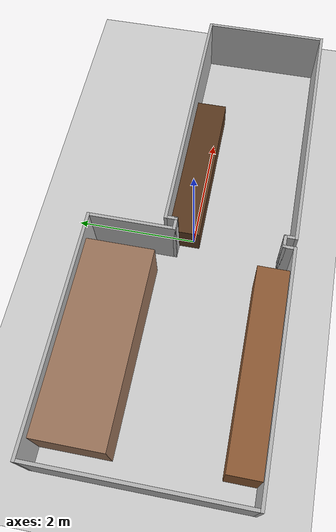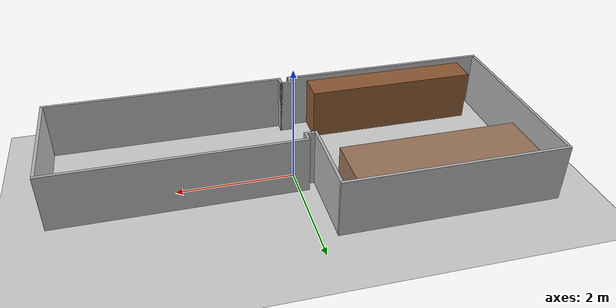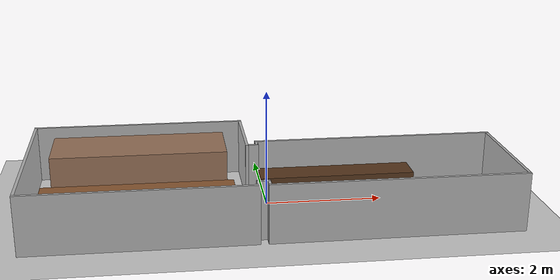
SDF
<sdf version='1.10'>
  <world name='empty'>
    <physics name='1ms' type='ignored'>
      <max_step_size>0.001</max_step_size>
      <real_time_factor>1</real_time_factor>
      <real_time_update_rate>1000</real_time_update_rate>
    </physics>
    <plugin name='gz::sim::systems::Physics' filename='gz-sim-physics-system'/>
    <plugin name='gz::sim::systems::UserCommands' filename='gz-sim-user-commands-system'/>
    <plugin name='gz::sim::systems::SceneBroadcaster' filename='gz-sim-scene-broadcaster-system'/>
    <plugin name='gz::sim::systems::Contact' filename='gz-sim-contact-system'/>
    <plugin name='gz::sim::systems::NavSat' filename='gz-sim-navsat-system' />
    <plugin name='gz::sim::systems::Sensors' filename='gz-sim-sensors-system'>
      <render_engine> ogre2 </render_engine>
    </plugin>
    <plugin name='gz::sim::systems::Imu' filename='gz-sim-imu-system'/>

    <gravity>0 0 -9.8000000000000007</gravity>
    <magnetic_field>5.5644999999999998e-06 2.2875799999999999e-05 -4.2388400000000002e-05</magnetic_field>
    <atmosphere type='adiabatic'/>
    <scene>
      <ambient>0.400000006 0.400000006 0.400000006 1</ambient>
      <background>0.699999988 0.699999988 0.699999988 1</background>
      <shadows>true</shadows>
    </scene>
    <model name='ground_plane'>
      <static>true</static>
      <link name='link'>
        <collision name='collision'>
          <geometry>
            <plane>
              <normal>0 0 1</normal>
              <size>100 100</size>
            </plane>
          </geometry>
          <surface>
            <friction>
              <ode/>
            </friction>
            <bounce/>
            <contact/>
          </surface>
        </collision>
        <visual name='visual'>
          <geometry>
            <plane>
              <normal>0 0 1</normal>
              <size>100 100</size>
            </plane>
          </geometry>
          <material>
            <ambient>0.800000012 0.800000012 0.800000012 1</ambient>
            <diffuse>0.800000012 0.800000012 0.800000012 1</diffuse>
            <specular>0.800000012 0.800000012 0.800000012 1</specular>
          </material>
        </visual>
        <pose>0 0 0 0 0 0</pose>
        <inertial>
          <pose>0 0 0 0 0 0</pose>
          <mass>1</mass>
          <inertia>
            <ixx>1</ixx>
            <ixy>0</ixy>
            <ixz>0</ixz>
            <iyy>1</iyy>
            <iyz>0</iyz>
            <izz>1</izz>
          </inertia>
        </inertial>
        <enable_wind>false</enable_wind>
      </link>
      <pose>0 0 0 0 0 0</pose>
      <self_collide>false</self_collide>
    </model>

    <!--
    ===========================================================
    ROOM WALLS
    ===========================================================
    -->
    <!-- Wall 1: Top of left section (365 cm) -->
    <model name='wall_top_left'>
      <pose>-2.1625 1.625 0.5 0 0 0</pose>
      <link name='wall_link'>
        <inertial>
          <inertia><ixx>0.16666</ixx><ixy>0</ixy><ixz>0</ixz><iyy>0.16666</iyy><iyz>0</iyz><izz>0.16666</izz></inertia>
          <mass>1</mass>
          <pose>0 0 0 0 0 0</pose>
        </inertial>
        <collision name='wall_collision'>
          <geometry><box><size>3.75 0.05 1.0</size></box></geometry>
          <surface><friction><ode/></friction><bounce/><contact/></surface>
        </collision>
        <visual name='wall_visual'>
          <geometry><box><size>3.75 0.05 1.0</size></box></geometry>
          <material>
            <ambient>0.300000012 0.300000012 0.300000012 1</ambient>
            <diffuse>0.699999988 0.699999988 0.699999988 1</diffuse>
            <specular>1 1 1 1</specular>
          </material>
        </visual>
        <pose>0 0 0 0 0 0</pose>
        <enable_wind>false</enable_wind>
      </link>
      <static>true</static>
      <self_collide>false</self_collide>
    </model>

    <!-- Wall 2: Right edge of left section, upper portion (137 cm drop) -->
    <model name='wall_step_top_vert1'>
      <pose>-0.3125 0.915 0.5 0 0 0</pose>
      <link name='wall_link'>
        <inertial>
          <inertia><ixx>0.16666</ixx><ixy>0</ixy><ixz>0</ixz><iyy>0.16666</iyy><iyz>0</iyz><izz>0.16666</izz></inertia>
          <mass>1</mass>
          <pose>0 0 0 0 0 0</pose>
        </inertial>
        <collision name='wall_collision'>
          <geometry><box><size>0.05 1.37 1.0</size></box></geometry>
          <surface><friction><ode/></friction><bounce/><contact/></surface>
        </collision>
        <visual name='wall_visual'>
          <geometry><box><size>0.05 1.37 1.0</size></box></geometry>
          <material>
            <ambient>0.300000012 0.300000012 0.300000012 1</ambient>
            <diffuse>0.699999988 0.699999988 0.699999988 1</diffuse>
            <specular>1 1 1 1</specular>
          </material>
        </visual>
        <pose>0 0 0 0 0 0</pose>
        <enable_wind>false</enable_wind>
      </link>
      <static>true</static>
      <self_collide>false</self_collide>
    </model>

    <!-- Wall 3: Top step horizontal (22.5 cm) -->
    <model name='wall_step_top_horiz'>
      <pose>-0.225 0.255 0.5 0 0 0</pose>
      <link name='wall_link'>
        <inertial>
          <inertia><ixx>0.16666</ixx><ixy>0</ixy><ixz>0</ixz><iyy>0.16666</iyy><iyz>0</iyz><izz>0.16666</izz></inertia>
          <mass>1</mass>
          <pose>0 0 0 0 0 0</pose>
        </inertial>
        <collision name='wall_collision'>
          <geometry><box><size>0.225 0.05 1.0</size></box></geometry>
          <surface><friction><ode/></friction><bounce/><contact/></surface>
        </collision>
        <visual name='wall_visual'>
          <geometry><box><size>0.225 0.05 1.0</size></box></geometry>
          <material>
            <ambient>0.300000012 0.300000012 0.300000012 1</ambient>
            <diffuse>0.699999988 0.699999988 0.699999988 1</diffuse>
            <specular>1 1 1 1</specular>
          </material>
        </visual>
        <pose>0 0 0 0 0 0</pose>
        <enable_wind>false</enable_wind>
      </link>
      <static>true</static>
      <self_collide>false</self_collide>
    </model>

    <!-- Wall 4: Top step vertical lip (17 cm up) -->
    <model name='wall_step_top_vert2'>
      <pose>-0.1375 0.315 0.5 0 0 0</pose>
      <link name='wall_link'>
        <inertial>
          <inertia><ixx>0.16666</ixx><ixy>0</ixy><ixz>0</ixz><iyy>0.16666</iyy><iyz>0</iyz><izz>0.16666</izz></inertia>
          <mass>1</mass>
          <pose>0 0 0 0 0 0</pose>
        </inertial>
        <collision name='wall_collision'>
          <geometry><box><size>0.05 0.17 1.0</size></box></geometry>
          <surface><friction><ode/></friction><bounce/><contact/></surface>
        </collision>
        <visual name='wall_visual'>
          <geometry><box><size>0.05 0.17 1.0</size></box></geometry>
          <material>
            <ambient>0.300000012 0.300000012 0.300000012 1</ambient>
            <diffuse>0.699999988 0.699999988 0.699999988 1</diffuse>
            <specular>1 1 1 1</specular>
          </material>
        </visual>
        <pose>0 0 0 0 0 0</pose>
        <enable_wind>false</enable_wind>
      </link>
      <static>true</static>
      <self_collide>false</self_collide>
    </model>

    <!-- Wall 5: Top of right section (410 cm) -->
    <model name='wall_top_right'>
      <pose>1.9375 0.425 0.5 0 0 0</pose>
      <link name='wall_link'>
        <inertial>
          <inertia><ixx>0.16666</ixx><ixy>0</ixy><ixz>0</ixz><iyy>0.16666</iyy><iyz>0</iyz><izz>0.16666</izz></inertia>
          <mass>1</mass>
          <pose>0 0 0 0 0 0</pose>
        </inertial>
        <collision name='wall_collision'>
          <geometry><box><size>4.20 0.05 1.0</size></box></geometry>
          <surface><friction><ode/></friction><bounce/><contact/></surface>
        </collision>
        <visual name='wall_visual'>
          <geometry><box><size>4.20 0.05 1.0</size></box></geometry>
          <material>
            <ambient>0.300000012 0.300000012 0.300000012 1</ambient>
            <diffuse>0.699999988 0.699999988 0.699999988 1</diffuse>
            <specular>1 1 1 1</specular>
          </material>
        </visual>
        <pose>0 0 0 0 0 0</pose>
        <enable_wind>false</enable_wind>
      </link>
      <static>true</static>
      <self_collide>false</self_collide>
    </model>

    <!-- Wall 6: Right wall (200 cm) -->
    <model name='wall_right'>
      <pose>4.0125 -0.60 0.5 0 0 0</pose>
      <link name='wall_link'>
        <inertial>
          <inertia><ixx>0.16666</ixx><ixy>0</ixy><ixz>0</ixz><iyy>0.16666</iyy><iyz>0</iyz><izz>0.16666</izz></inertia>
          <mass>1</mass>
          <pose>0 0 0 0 0 0</pose>
        </inertial>
        <collision name='wall_collision'>
          <geometry><box><size>0.05 2.00 1.0</size></box></geometry>
          <surface><friction><ode/></friction><bounce/><contact/></surface>
        </collision>
        <visual name='wall_visual'>
          <geometry><box><size>0.05 2.00 1.0</size></box></geometry>
          <material>
            <ambient>0.300000012 0.300000012 0.300000012 1</ambient>
            <diffuse>0.699999988 0.699999988 0.699999988 1</diffuse>
            <specular>1 1 1 1</specular>
          </material>
        </visual>
        <pose>0 0 0 0 0 0</pose>
        <enable_wind>false</enable_wind>
      </link>
      <static>true</static>
      <self_collide>false</self_collide>
    </model>

    <!-- Wall 7: Bottom of right section (410 cm) -->
    <model name='wall_bottom_right'>
      <pose>1.9375 -1.625 0.5 0 0 0</pose>
      <link name='wall_link'>
        <inertial>
          <inertia><ixx>0.16666</ixx><ixy>0</ixy><ixz>0</ixz><iyy>0.16666</iyy><iyz>0</iyz><izz>0.16666</izz></inertia>
          <mass>1</mass>
          <pose>0 0 0 0 0 0</pose>
        </inertial>
        <collision name='wall_collision'>
          <geometry><box><size>4.20 0.05 1.0</size></box></geometry>
          <surface><friction><ode/></friction><bounce/><contact/></surface>
        </collision>
        <visual name='wall_visual'>
          <geometry><box><size>4.20 0.05 1.0</size></box></geometry>
          <material>
            <ambient>0.300000012 0.300000012 0.300000012 1</ambient>
            <diffuse>0.699999988 0.699999988 0.699999988 1</diffuse>
            <specular>1 1 1 1</specular>
          </material>
        </visual>
        <pose>0 0 0 0 0 0</pose>
        <enable_wind>false</enable_wind>
      </link>
      <static>true</static>
      <self_collide>false</self_collide>
    </model>

    <!-- Wall 8: Bottom step vertical lip (17 cm up) -->
    <model name='wall_step_bot_vert1'>
      <pose>-0.1375 -1.515 0.5 0 0 0</pose>
      <link name='wall_link'>
        <inertial>
          <inertia><ixx>0.16666</ixx><ixy>0</ixy><ixz>0</ixz><iyy>0.16666</iyy><iyz>0</iyz><izz>0.16666</izz></inertia>
          <mass>1</mass>
          <pose>0 0 0 0 0 0</pose>
        </inertial>
        <collision name='wall_collision'>
          <geometry><box><size>0.05 0.17 1.0</size></box></geometry>
          <surface><friction><ode/></friction><bounce/><contact/></surface>
        </collision>
        <visual name='wall_visual'>
          <geometry><box><size>0.05 0.17 1.0</size></box></geometry>
          <material>
            <ambient>0.300000012 0.300000012 0.300000012 1</ambient>
            <diffuse>0.699999988 0.699999988 0.699999988 1</diffuse>
            <specular>1 1 1 1</specular>
          </material>
        </visual>
        <pose>0 0 0 0 0 0</pose>
        <enable_wind>false</enable_wind>
      </link>
      <static>true</static>
      <self_collide>false</self_collide>
    </model>

    <!-- Wall 9: Bottom step horizontal (22.5 cm) -->
    <model name='wall_step_bot_horiz'>
      <pose>-0.225 -1.455 0.5 0 0 0</pose>
      <link name='wall_link'>
        <inertial>
          <inertia><ixx>0.16666</ixx><ixy>0</ixy><ixz>0</ixz><iyy>0.16666</iyy><iyz>0</iyz><izz>0.16666</izz></inertia>
          <mass>1</mass>
          <pose>0 0 0 0 0 0</pose>
        </inertial>
        <collision name='wall_collision'>
          <geometry><box><size>0.225 0.05 1.0</size></box></geometry>
          <surface><friction><ode/></friction><bounce/><contact/></surface>
        </collision>
        <visual name='wall_visual'>
          <geometry><box><size>0.225 0.05 1.0</size></box></geometry>
          <material>
            <ambient>0.300000012 0.300000012 0.300000012 1</ambient>
            <diffuse>0.699999988 0.699999988 0.699999988 1</diffuse>
            <specular>1 1 1 1</specular>
          </material>
        </visual>
        <pose>0 0 0 0 0 0</pose>
        <enable_wind>false</enable_wind>
      </link>
      <static>true</static>
      <self_collide>false</self_collide>
    </model>

    <!-- Wall 10: Right edge of left section, lower portion (17 cm) -->
    <model name='wall_step_bot_vert2'>
      <pose>-0.3125 -1.515 0.5 0 0 0</pose>
      <link name='wall_link'>
        <inertial>
          <inertia><ixx>0.16666</ixx><ixy>0</ixy><ixz>0</ixz><iyy>0.16666</iyy><iyz>0</iyz><izz>0.16666</izz></inertia>
          <mass>1</mass>
          <pose>0 0 0 0 0 0</pose>
        </inertial>
        <collision name='wall_collision'>
          <geometry><box><size>0.05 0.17 1.0</size></box></geometry>
          <surface><friction><ode/></friction><bounce/><contact/></surface>
        </collision>
        <visual name='wall_visual'>
          <geometry><box><size>0.05 0.17 1.0</size></box></geometry>
          <material>
            <ambient>0.300000012 0.300000012 0.300000012 1</ambient>
            <diffuse>0.699999988 0.699999988 0.699999988 1</diffuse>
            <specular>1 1 1 1</specular>
          </material>
        </visual>
        <pose>0 0 0 0 0 0</pose>
        <enable_wind>false</enable_wind>
      </link>
      <static>true</static>
      <self_collide>false</self_collide>
    </model>

    <!-- Wall 11: Bottom of left section (365 cm) -->
    <model name='wall_bottom_left'>
      <pose>-2.1625 -1.625 0.5 0 0 0</pose>
      <link name='wall_link'>
        <inertial>
          <inertia><ixx>0.16666</ixx><ixy>0</ixy><ixz>0</ixz><iyy>0.16666</iyy><iyz>0</iyz><izz>0.16666</izz></inertia>
          <mass>1</mass>
          <pose>0 0 0 0 0 0</pose>
        </inertial>
        <collision name='wall_collision'>
          <geometry><box><size>3.75 0.05 1.0</size></box></geometry>
          <surface><friction><ode/></friction><bounce/><contact/></surface>
        </collision>
        <visual name='wall_visual'>
          <geometry><box><size>3.75 0.05 1.0</size></box></geometry>
          <material>
            <ambient>0.300000012 0.300000012 0.300000012 1</ambient>
            <diffuse>0.699999988 0.699999988 0.699999988 1</diffuse>
            <specular>1 1 1 1</specular>
          </material>
        </visual>
        <pose>0 0 0 0 0 0</pose>
        <enable_wind>false</enable_wind>
      </link>
      <static>true</static>
      <self_collide>false</self_collide>
    </model>

    <!-- Wall 12: Left wall (320 cm) -->
    <model name='wall_left'>
      <pose>-4.0125 0.0 0.5 0 0 0</pose>
      <link name='wall_link'>
        <inertial>
          <inertia><ixx>0.16666</ixx><ixy>0</ixy><ixz>0</ixz><iyy>0.16666</iyy><iyz>0</iyz><izz>0.16666</izz></inertia>
          <mass>1</mass>
          <pose>0 0 0 0 0 0</pose>
        </inertial>
        <collision name='wall_collision'>
          <geometry><box><size>0.05 3.20 1.0</size></box></geometry>
          <surface><friction><ode/></friction><bounce/><contact/></surface>
        </collision>
        <visual name='wall_visual'>
          <geometry><box><size>0.05 3.20 1.0</size></box></geometry>
          <material>
            <ambient>0.300000012 0.300000012 0.300000012 1</ambient>
            <diffuse>0.699999988 0.699999988 0.699999988 1</diffuse>
            <specular>1 1 1 1</specular>
          </material>
        </visual>
        <pose>0 0 0 0 0 0</pose>
        <enable_wind>false</enable_wind>
      </link>
      <static>true</static>
      <self_collide>false</self_collide>
    </model>

    <!--
    ===========================================================
    FURNITURE  (all static — permanent obstacles)
    ===========================================================
    -->
    <!-- Sofa -->
    <model name='sofa'>
      <pose>-2.1675 1.05 0.40 0 0 0</pose>
      <link name='sofa_link'>
        <inertial>
          <inertia><ixx>1</ixx><ixy>0</ixy><ixz>0</ixz><iyy>1</iyy><iyz>0</iyz><izz>1</izz></inertia>
          <mass>1</mass>
          <pose>0 0 0 0 0 0</pose>
        </inertial>
        <collision name='sofa_collision'>
          <geometry><box><size>3.06 1.10 0.80</size></box></geometry>
          <surface><friction><ode/></friction><bounce/><contact/></surface>
        </collision>
        <visual name='sofa_visual'>
          <geometry><box><size>3.06 1.10 0.80</size></box></geometry>
          <material>
            <ambient>0.35 0.25 0.20 1</ambient>
            <diffuse>0.60 0.45 0.35 1</diffuse>
            <specular>0.2 0.2 0.2 1</specular>
          </material>
        </visual>
        <pose>0 0 0 0 0 0</pose>
        <enable_wind>false</enable_wind>
      </link>
      <static>true</static>
      <self_collide>false</self_collide>
    </model>

    <!-- Wall Unit -->
    <model name='wall_unit'>
      <pose>-2.1625 -1.35 0.45 0 0 0</pose>
      <link name='wall_unit_link'>
        <inertial>
          <inertia><ixx>1</ixx><ixy>0</ixy><ixz>0</ixz><iyy>1</iyy><iyz>0</iyz><izz>1</izz></inertia>
          <mass>1</mass>
          <pose>0 0 0 0 0 0</pose>
        </inertial>
        <collision name='wall_unit_collision'>
          <geometry><box><size>3.01 0.50 0.90</size></box></geometry>
          <surface><friction><ode/></friction><bounce/><contact/></surface>
        </collision>
        <visual name='wall_unit_visual'>
          <geometry><box><size>3.01 0.50 0.90</size></box></geometry>
          <material>
            <ambient>0.30 0.20 0.10 1</ambient>
            <diffuse>0.55 0.35 0.20 1</diffuse>
            <specular>0.3 0.3 0.3 1</specular>
          </material>
        </visual>
        <pose>0 0 0 0 0 0</pose>
        <enable_wind>false</enable_wind>
      </link>
      <static>true</static>
      <self_collide>false</self_collide>
    </model>

    <!-- Board -->
    <model name='board'>
      <pose>1.2235 0.145 0.25 0 0 0</pose>
      <link name='board_link'>
        <inertial>
          <inertia><ixx>1</ixx><ixy>0</ixy><ixz>0</ixz><iyy>1</iyy><iyz>0</iyz><izz>1</izz></inertia>
          <mass>1</mass>
          <pose>0 0 0 0 0 0</pose>
        </inertial>
        <collision name='board_collision'>
          <geometry><box><size>2.672 0.51 0.50</size></box></geometry>
          <surface><friction><ode/></friction><bounce/><contact/></surface>
        </collision>
        <visual name='board_visual'>
          <geometry><box><size>2.672 0.51 0.50</size></box></geometry>
          <material>
            <ambient>0.18 0.12 0.07 1</ambient>
            <diffuse>0.35 0.22 0.12 1</diffuse>
            <specular>0.3 0.3 0.3 1</specular>
          </material>
        </visual>
        <pose>0 0 0 0 0 0</pose>
        <enable_wind>false</enable_wind>
      </link>
      <static>true</static>
      <self_collide>false</self_collide>
    </model>

    <light name='sun' type='directional'>
      <pose>0 0 10 0 0 0</pose>
      <cast_shadows>true</cast_shadows>
      <intensity>1</intensity>
      <direction>-0.5 0.10000000000000001 -0.90000000000000002</direction>
      <diffuse>0.800000012 0.800000012 0.800000012 1</diffuse>
      <specular>0.200000003 0.200000003 0.200000003 1</specular>
      <attenuation>
        <range>1000</range>
        <linear>0.01</linear>
        <constant>0.90000000000000002</constant>
        <quadratic>0.001</quadratic>
      </attenuation>
      <spot>
        <inner_angle>0</inner_angle>
        <outer_angle>0</outer_angle>
        <falloff>0</falloff>
      </spot>
    </light>
  </world>
</sdf>
